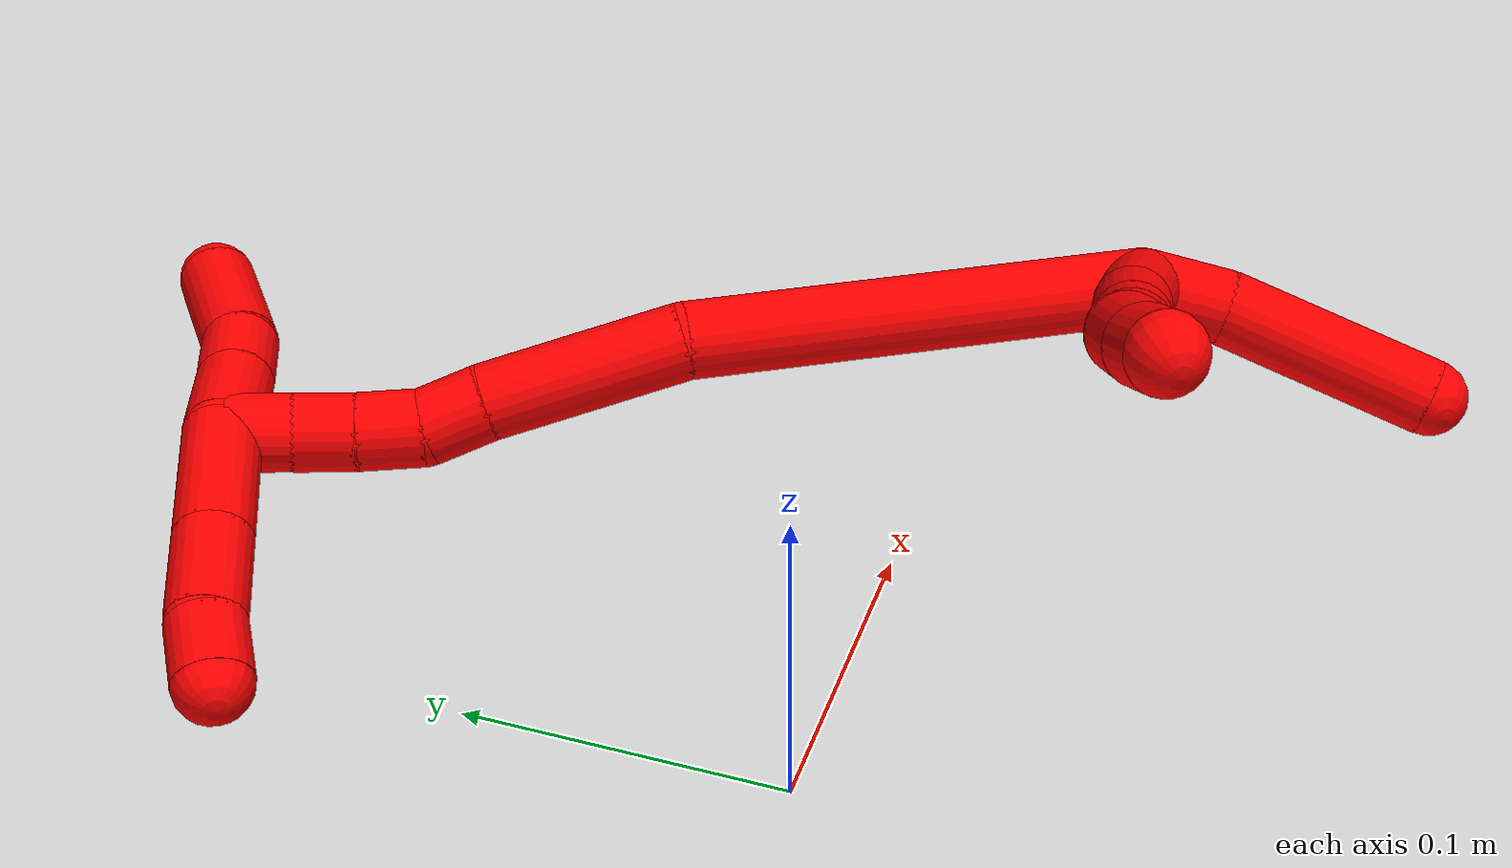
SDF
<sdf version="1.7">
 <world name="default">
  <model name="2">
   <static>0</static>
   <link name="2">
    <collision name="collision-cylinder-e_1_2_8">
     <pose>-0.010864 0.001803 -0.015201 -3.02351 -0.617224 2.77492</pose>
     <geometry><cylinder><radius>0.0125</radius><length>0.037543</length></cylinder></geometry>
     <surface>
      <friction><ode><mu>1.16</mu><mu2>1.16</mu2><slip1>0</slip1><slip2>0</slip2></ode></friction>
      <contact><ode><kp>1e+06</kp><kd>1</kd><max_vel>0</max_vel><min_depth>0.001</min_depth></ode></contact>
     </surface>
    </collision>
    <visual name="visual-cylinder-e_1_2_8">
     <pose>-0.010864 0.001803 -0.015201 -3.02351 -0.617224 2.77492</pose>
     <geometry><cylinder><radius>0.0125</radius><length>0.037543</length></cylinder></geometry>
     <material><ambient>1 0 0 1</ambient></material>
    </visual>
    <collision name="collision-cylinder-e_2_8_9">
     <pose>-0.029766 0.004052 -0.042951 -3.10614 -0.569348 3.02057</pose>
     <geometry><cylinder><radius>0.0125</radius><length>0.029816</length></cylinder></geometry>
     <surface>
      <friction><ode><mu>1.16</mu><mu2>1.16</mu2><slip1>0</slip1><slip2>0</slip2></ode></friction>
      <contact><ode><kp>1e+06</kp><kd>1</kd><max_vel>0</max_vel><min_depth>0.001</min_depth></ode></contact>
     </surface>
    </collision>
    <visual name="visual-cylinder-e_2_8_9">
     <pose>-0.029766 0.004052 -0.042951 -3.10614 -0.569348 3.02057</pose>
     <geometry><cylinder><radius>0.0125</radius><length>0.029816</length></cylinder></geometry>
     <material><ambient>1 0 0 1</ambient></material>
    </visual>
    <collision name="collision-cylinder-e_3_9_10">
     <pose>-0.043634 0.004515 -0.063784 -3.13941 -0.61335 3.1347</pose>
     <geometry><cylinder><radius>0.0125</radius><length>0.020262</length></cylinder></geometry>
     <surface>
      <friction><ode><mu>1.16</mu><mu2>1.16</mu2><slip1>0</slip1><slip2>0</slip2></ode></friction>
      <contact><ode><kp>1e+06</kp><kd>1</kd><max_vel>0</max_vel><min_depth>0.001</min_depth></ode></contact>
     </surface>
    </collision>
    <visual name="visual-cylinder-e_3_9_10">
     <pose>-0.043634 0.004515 -0.063784 -3.13941 -0.61335 3.1347</pose>
     <geometry><cylinder><radius>0.0125</radius><length>0.020262</length></cylinder></geometry>
     <material><ambient>1 0 0 1</ambient></material>
    </visual>
    <collision name="collision-cylinder-e_4_10_11">
     <pose>-0.05612 0.004737 -0.079702 -3.11484 -0.716793 3.07021</pose>
     <geometry><cylinder><radius>0.0125</radius><length>0.020257</length></cylinder></geometry>
     <surface>
      <friction><ode><mu>1.16</mu><mu2>1.16</mu2><slip1>0</slip1><slip2>0</slip2></ode></friction>
      <contact><ode><kp>1e+06</kp><kd>1</kd><max_vel>0</max_vel><min_depth>0.001</min_depth></ode></contact>
     </surface>
    </collision>
    <visual name="visual-cylinder-e_4_10_11">
     <pose>-0.05612 0.004737 -0.079702 -3.11484 -0.716793 3.07021</pose>
     <geometry><cylinder><radius>0.0125</radius><length>0.020257</length></cylinder></geometry>
     <material><ambient>1 0 0 1</ambient></material>
    </visual>
    <collision name="collision-cylinder-e_5_11_12">
     <pose>-0.067458 0.003157 -0.097165 2.962 -0.438407 -2.37343</pose>
     <geometry><cylinder><radius>0.0125</radius><length>0.022068</length></cylinder></geometry>
     <surface>
      <friction><ode><mu>1.16</mu><mu2>1.16</mu2><slip1>0</slip1><slip2>0</slip2></ode></friction>
      <contact><ode><kp>1e+06</kp><kd>1</kd><max_vel>0</max_vel><min_depth>0.001</min_depth></ode></contact>
     </surface>
    </collision>
    <visual name="visual-cylinder-e_5_11_12">
     <pose>-0.067458 0.003157 -0.097165 2.962 -0.438407 -2.37343</pose>
     <geometry><cylinder><radius>0.0125</radius><length>0.022068</length></cylinder></geometry>
     <material><ambient>1 0 0 1</ambient></material>
    </visual>
    <collision name="collision-cylinder-e_6_12_6">
     <pose>-0.076292 -0.001038 -0.115798 2.87438 -0.426776 -2.03119</pose>
     <geometry><cylinder><radius>0.0125</radius><length>0.020054</length></cylinder></geometry>
     <surface>
      <friction><ode><mu>1.16</mu><mu2>1.16</mu2><slip1>0</slip1><slip2>0</slip2></ode></friction>
      <contact><ode><kp>1e+06</kp><kd>1</kd><max_vel>0</max_vel><min_depth>0.001</min_depth></ode></contact>
     </surface>
    </collision>
    <visual name="visual-cylinder-e_6_12_6">
     <pose>-0.076292 -0.001038 -0.115798 2.87438 -0.426776 -2.03119</pose>
     <geometry><cylinder><radius>0.0125</radius><length>0.020054</length></cylinder></geometry>
     <material><ambient>1 0 0 1</ambient></material>
    </visual>
    <collision name="collision-cylinder-e_1_2_13">
     <pose>0.010619 -0.008432 -0.004123 2.02556 0.846981 1.25089</pose>
     <geometry><cylinder><radius>0.0125</radius><length>0.028346</length></cylinder></geometry>
     <surface>
      <friction><ode><mu>1.16</mu><mu2>1.16</mu2><slip1>0</slip1><slip2>0</slip2></ode></friction>
      <contact><ode><kp>1e+06</kp><kd>1</kd><max_vel>0</max_vel><min_depth>0.001</min_depth></ode></contact>
     </surface>
    </collision>
    <visual name="visual-cylinder-e_1_2_13">
     <pose>0.010619 -0.008432 -0.004123 2.02556 0.846981 1.25089</pose>
     <geometry><cylinder><radius>0.0125</radius><length>0.028346</length></cylinder></geometry>
     <material><ambient>1 0 0 1</ambient></material>
    </visual>
    <collision name="collision-cylinder-e_2_13_5">
     <pose>0.045373 -0.034532 -0.027967 2.41105 0.739116 1.58358</pose>
     <geometry><cylinder><radius>0.0125</radius><length>0.071654</length></cylinder></geometry>
     <surface>
      <friction><ode><mu>1.16</mu><mu2>1.16</mu2><slip1>0</slip1><slip2>0</slip2></ode></friction>
      <contact><ode><kp>1e+06</kp><kd>1</kd><max_vel>0</max_vel><min_depth>0.001</min_depth></ode></contact>
     </surface>
    </collision>
    <visual name="visual-cylinder-e_2_13_5">
     <pose>0.045373 -0.034532 -0.027967 2.41105 0.739116 1.58358</pose>
     <geometry><cylinder><radius>0.0125</radius><length>0.071654</length></cylinder></geometry>
     <material><ambient>1 0 0 1</ambient></material>
    </visual>
    <collision name="collision-cylinder-e_1_2_14">
     <pose>-0.044547 0.061 0.002425 -1.53106 -0.630385 0.607328</pose>
     <geometry><cylinder><radius>0.0125</radius><length>0.151147</length></cylinder></geometry>
     <surface>
      <friction><ode><mu>1.16</mu><mu2>1.16</mu2><slip1>0</slip1><slip2>0</slip2></ode></friction>
      <contact><ode><kp>1e+06</kp><kd>1</kd><max_vel>0</max_vel><min_depth>0.001</min_depth></ode></contact>
     </surface>
    </collision>
    <visual name="visual-cylinder-e_1_2_14">
     <pose>-0.044547 0.061 0.002425 -1.53106 -0.630385 0.607328</pose>
     <geometry><cylinder><radius>0.0125</radius><length>0.151147</length></cylinder></geometry>
     <material><ambient>1 0 0 1</ambient></material>
    </visual>
    <collision name="collision-cylinder-e_2_14_15">
     <pose>-0.101935 0.152126 0.006085 -1.52986 -0.402618 0.386874</pose>
     <geometry><cylinder><radius>0.0125</radius><length>0.065542</length></cylinder></geometry>
     <surface>
      <friction><ode><mu>1.16</mu><mu2>1.16</mu2><slip1>0</slip1><slip2>0</slip2></ode></friction>
      <contact><ode><kp>1e+06</kp><kd>1</kd><max_vel>0</max_vel><min_depth>0.001</min_depth></ode></contact>
     </surface>
    </collision>
    <visual name="visual-cylinder-e_2_14_15">
     <pose>-0.101935 0.152126 0.006085 -1.52986 -0.402618 0.386874</pose>
     <geometry><cylinder><radius>0.0125</radius><length>0.065542</length></cylinder></geometry>
     <material><ambient>1 0 0 1</ambient></material>
    </visual>
    <collision name="collision-cylinder-e_3_15_16">
     <pose>-0.1181 0.192106 0.007223 -1.58044 -0.325301 0.328399</pose>
     <geometry><cylinder><radius>0.0125</radius><length>0.020802</length></cylinder></geometry>
     <surface>
      <friction><ode><mu>1.16</mu><mu2>1.16</mu2><slip1>0</slip1><slip2>0</slip2></ode></friction>
      <contact><ode><kp>1e+06</kp><kd>1</kd><max_vel>0</max_vel><min_depth>0.001</min_depth></ode></contact>
     </surface>
    </collision>
    <visual name="visual-cylinder-e_3_15_16">
     <pose>-0.1181 0.192106 0.007223 -1.58044 -0.325301 0.328399</pose>
     <geometry><cylinder><radius>0.0125</radius><length>0.020802</length></cylinder></geometry>
     <material><ambient>1 0 0 1</ambient></material>
    </visual>
    <collision name="collision-cylinder-e_4_16_17">
     <pose>-0.127415 0.21036 0.008614 -1.39572 -0.612341 0.518283</pose>
     <geometry><cylinder><radius>0.0125</radius><length>0.020845</length></cylinder></geometry>
     <surface>
      <friction><ode><mu>1.16</mu><mu2>1.16</mu2><slip1>0</slip1><slip2>0</slip2></ode></friction>
      <contact><ode><kp>1e+06</kp><kd>1</kd><max_vel>0</max_vel><min_depth>0.001</min_depth></ode></contact>
     </surface>
    </collision>
    <visual name="visual-cylinder-e_4_16_17">
     <pose>-0.127415 0.21036 0.008614 -1.39572 -0.612341 0.518283</pose>
     <geometry><cylinder><radius>0.0125</radius><length>0.020845</length></cylinder></geometry>
     <material><ambient>1 0 0 1</ambient></material>
    </visual>
    <collision name="collision-cylinder-e_5_17_18">
     <pose>-0.139386 0.226627 0.012049 -1.3279 -0.635598 0.503839</pose>
     <geometry><cylinder><radius>0.0125</radius><length>0.020148</length></cylinder></geometry>
     <surface>
      <friction><ode><mu>1.16</mu><mu2>1.16</mu2><slip1>0</slip1><slip2>0</slip2></ode></friction>
      <contact><ode><kp>1e+06</kp><kd>1</kd><max_vel>0</max_vel><min_depth>0.001</min_depth></ode></contact>
     </surface>
    </collision>
    <visual name="visual-cylinder-e_5_17_18">
     <pose>-0.139386 0.226627 0.012049 -1.3279 -0.635598 0.503839</pose>
     <geometry><cylinder><radius>0.0125</radius><length>0.020148</length></cylinder></geometry>
     <material><ambient>1 0 0 1</ambient></material>
    </visual>
    <collision name="collision-cylinder-e_6_18_1">
     <pose>-0.152845 0.242204 0.014607 -1.49206 -0.768726 0.715478</pose>
     <geometry><cylinder><radius>0.0125</radius><length>0.021516</length></cylinder></geometry>
     <surface>
      <friction><ode><mu>1.16</mu><mu2>1.16</mu2><slip1>0</slip1><slip2>0</slip2></ode></friction>
      <contact><ode><kp>1e+06</kp><kd>1</kd><max_vel>0</max_vel><min_depth>0.001</min_depth></ode></contact>
     </surface>
    </collision>
    <visual name="visual-cylinder-e_6_18_1">
     <pose>-0.152845 0.242204 0.014607 -1.49206 -0.768726 0.715478</pose>
     <geometry><cylinder><radius>0.0125</radius><length>0.021516</length></cylinder></geometry>
     <material><ambient>1 0 0 1</ambient></material>
    </visual>
    <collision name="collision-cylinder-e_1_1_19">
     <pose>-0.15713 0.248456 0.03053 0.094839 0.204747 0.00975</pose>
     <geometry><cylinder><radius>0.0125</radius><length>0.031425</length></cylinder></geometry>
     <surface>
      <friction><ode><mu>1.16</mu><mu2>1.16</mu2><slip1>0</slip1><slip2>0</slip2></ode></friction>
      <contact><ode><kp>1e+06</kp><kd>1</kd><max_vel>0</max_vel><min_depth>0.001</min_depth></ode></contact>
     </surface>
    </collision>
    <visual name="visual-cylinder-e_1_1_19">
     <pose>-0.15713 0.248456 0.03053 0.094839 0.204747 0.00975</pose>
     <geometry><cylinder><radius>0.0125</radius><length>0.031425</length></cylinder></geometry>
     <material><ambient>1 0 0 1</ambient></material>
    </visual>
    <collision name="collision-cylinder-e_2_19_20">
     <pose>-0.15225 0.245999 0.057452 0.086013 0.143661 0.006193</pose>
     <geometry><cylinder><radius>0.0125</radius><length>0.023541</length></cylinder></geometry>
     <surface>
      <friction><ode><mu>1.16</mu><mu2>1.16</mu2><slip1>0</slip1><slip2>0</slip2></ode></friction>
      <contact><ode><kp>1e+06</kp><kd>1</kd><max_vel>0</max_vel><min_depth>0.001</min_depth></ode></contact>
     </surface>
    </collision>
    <visual name="visual-cylinder-e_2_19_20">
     <pose>-0.15225 0.245999 0.057452 0.086013 0.143661 0.006193</pose>
     <geometry><cylinder><radius>0.0125</radius><length>0.023541</length></cylinder></geometry>
     <material><ambient>1 0 0 1</ambient></material>
    </visual>
    <collision name="collision-cylinder-e_3_20_4">
     <pose>-0.15053 0.247559 0.091429 -0.113992 0.001532 -8.7e-05</pose>
     <geometry><cylinder><radius>0.0125</radius><length>0.045034</length></cylinder></geometry>
     <surface>
      <friction><ode><mu>1.16</mu><mu2>1.16</mu2><slip1>0</slip1><slip2>0</slip2></ode></friction>
      <contact><ode><kp>1e+06</kp><kd>1</kd><max_vel>0</max_vel><min_depth>0.001</min_depth></ode></contact>
     </surface>
    </collision>
    <visual name="visual-cylinder-e_3_20_4">
     <pose>-0.15053 0.247559 0.091429 -0.113992 0.001532 -8.7e-05</pose>
     <geometry><cylinder><radius>0.0125</radius><length>0.045034</length></cylinder></geometry>
     <material><ambient>1 0 0 1</ambient></material>
    </visual>
    <collision name="collision-cylinder-e_1_1_21">
     <pose>-0.159972 0.25466 -0.006671 -2.92801 0.015738 -0.146546</pose>
     <geometry><cylinder><radius>0.0125</radius><length>0.044795</length></cylinder></geometry>
     <surface>
      <friction><ode><mu>1.16</mu><mu2>1.16</mu2><slip1>0</slip1><slip2>0</slip2></ode></friction>
      <contact><ode><kp>1e+06</kp><kd>1</kd><max_vel>0</max_vel><min_depth>0.001</min_depth></ode></contact>
     </surface>
    </collision>
    <visual name="visual-cylinder-e_1_1_21">
     <pose>-0.159972 0.25466 -0.006671 -2.92801 0.015738 -0.146546</pose>
     <geometry><cylinder><radius>0.0125</radius><length>0.044795</length></cylinder></geometry>
     <material><ambient>1 0 0 1</ambient></material>
    </visual>
    <collision name="collision-cylinder-e_2_21_22">
     <pose>-0.159353 0.262965 -0.044968 -2.92809 0.015871 -0.147839</pose>
     <geometry><cylinder><radius>0.0125</radius><length>0.033591</length></cylinder></geometry>
     <surface>
      <friction><ode><mu>1.16</mu><mu2>1.16</mu2><slip1>0</slip1><slip2>0</slip2></ode></friction>
      <contact><ode><kp>1e+06</kp><kd>1</kd><max_vel>0</max_vel><min_depth>0.001</min_depth></ode></contact>
     </surface>
    </collision>
    <visual name="visual-cylinder-e_2_21_22">
     <pose>-0.159353 0.262965 -0.044968 -2.92809 0.015871 -0.147839</pose>
     <geometry><cylinder><radius>0.0125</radius><length>0.033591</length></cylinder></geometry>
     <material><ambient>1 0 0 1</ambient></material>
    </visual>
    <collision name="collision-cylinder-e_3_22_3">
     <pose>-0.157111 0.268123 -0.071884 -2.9905 0.183808 -1.76642</pose>
     <geometry><cylinder><radius>0.0125</radius><length>0.021614</length></cylinder></geometry>
     <surface>
      <friction><ode><mu>1.16</mu><mu2>1.16</mu2><slip1>0</slip1><slip2>0</slip2></ode></friction>
      <contact><ode><kp>1e+06</kp><kd>1</kd><max_vel>0</max_vel><min_depth>0.001</min_depth></ode></contact>
     </surface>
    </collision>
    <visual name="visual-cylinder-e_3_22_3">
     <pose>-0.157111 0.268123 -0.071884 -2.9905 0.183808 -1.76642</pose>
     <geometry><cylinder><radius>0.0125</radius><length>0.021614</length></cylinder></geometry>
     <material><ambient>1 0 0 1</ambient></material>
    </visual>
    <collision name="collision-sphere-3">
     <pose>-0.155136 0.269722 -0.082388 0 -0 0</pose>
     <geometry><sphere><radius>0.0125</radius></sphere></geometry>
     <surface>
      <friction><ode><mu>1.16</mu><mu2>1.16</mu2><slip1>0</slip1><slip2>0</slip2></ode></friction>
      <contact><ode><kp>1e+06</kp><kd>1</kd><max_vel>0</max_vel><min_depth>0.001</min_depth></ode></contact>
     </surface>
    </collision>
    <visual name="visual-sphere-3">
     <pose>-0.155136 0.269722 -0.082388 0 -0 0</pose>
     <geometry><sphere><radius>0.0125</radius></sphere></geometry>
     <material><ambient>1 0 0 1</ambient></material>
    </visual>
    <collision name="collision-sphere-22">
     <pose>-0.159086 0.266523 -0.06138 0 -0 0</pose>
     <geometry><sphere><radius>0.0125</radius></sphere></geometry>
     <surface>
      <friction><ode><mu>1.16</mu><mu2>1.16</mu2><slip1>0</slip1><slip2>0</slip2></ode></friction>
      <contact><ode><kp>1e+06</kp><kd>1</kd><max_vel>0</max_vel><min_depth>0.001</min_depth></ode></contact>
     </surface>
    </collision>
    <visual name="visual-sphere-22">
     <pose>-0.159086 0.266523 -0.06138 0 -0 0</pose>
     <geometry><sphere><radius>0.0125</radius></sphere></geometry>
     <material><ambient>1 0 0 1</ambient></material>
    </visual>
    <collision name="collision-sphere-21">
     <pose>-0.159619 0.259407 -0.028556 0 -0 0</pose>
     <geometry><sphere><radius>0.0125</radius></sphere></geometry>
     <surface>
      <friction><ode><mu>1.16</mu><mu2>1.16</mu2><slip1>0</slip1><slip2>0</slip2></ode></friction>
      <contact><ode><kp>1e+06</kp><kd>1</kd><max_vel>0</max_vel><min_depth>0.001</min_depth></ode></contact>
     </surface>
    </collision>
    <visual name="visual-sphere-21">
     <pose>-0.159619 0.259407 -0.028556 0 -0 0</pose>
     <geometry><sphere><radius>0.0125</radius></sphere></geometry>
     <material><ambient>1 0 0 1</ambient></material>
    </visual>
    <collision name="collision-sphere-4">
     <pose>-0.150496 0.25012 0.1138 0 -0 0</pose>
     <geometry><sphere><radius>0.0125</radius></sphere></geometry>
     <surface>
      <friction><ode><mu>1.16</mu><mu2>1.16</mu2><slip1>0</slip1><slip2>0</slip2></ode></friction>
      <contact><ode><kp>1e+06</kp><kd>1</kd><max_vel>0</max_vel><min_depth>0.001</min_depth></ode></contact>
     </surface>
    </collision>
    <visual name="visual-sphere-4">
     <pose>-0.150496 0.25012 0.1138 0 -0 0</pose>
     <geometry><sphere><radius>0.0125</radius></sphere></geometry>
     <material><ambient>1 0 0 1</ambient></material>
    </visual>
    <collision name="collision-sphere-20">
     <pose>-0.150565 0.244998 0.069058 0 -0 0</pose>
     <geometry><sphere><radius>0.0125</radius></sphere></geometry>
     <surface>
      <friction><ode><mu>1.16</mu><mu2>1.16</mu2><slip1>0</slip1><slip2>0</slip2></ode></friction>
      <contact><ode><kp>1e+06</kp><kd>1</kd><max_vel>0</max_vel><min_depth>0.001</min_depth></ode></contact>
     </surface>
    </collision>
    <visual name="visual-sphere-20">
     <pose>-0.150565 0.244998 0.069058 0 -0 0</pose>
     <geometry><sphere><radius>0.0125</radius></sphere></geometry>
     <material><ambient>1 0 0 1</ambient></material>
    </visual>
    <collision name="collision-sphere-12">
     <pose>-0.072142 0.001372 -0.106995 0 -0 0</pose>
     <geometry><sphere><radius>0.0125</radius></sphere></geometry>
     <surface>
      <friction><ode><mu>1.16</mu><mu2>1.16</mu2><slip1>0</slip1><slip2>0</slip2></ode></friction>
      <contact><ode><kp>1e+06</kp><kd>1</kd><max_vel>0</max_vel><min_depth>0.001</min_depth></ode></contact>
     </surface>
    </collision>
    <visual name="visual-sphere-12">
     <pose>-0.072142 0.001372 -0.106995 0 -0 0</pose>
     <geometry><sphere><radius>0.0125</radius></sphere></geometry>
     <material><ambient>1 0 0 1</ambient></material>
    </visual>
    <collision name="collision-sphere-11">
     <pose>-0.062774 0.004942 -0.087335 0 -0 0</pose>
     <geometry><sphere><radius>0.0125</radius></sphere></geometry>
     <surface>
      <friction><ode><mu>1.16</mu><mu2>1.16</mu2><slip1>0</slip1><slip2>0</slip2></ode></friction>
      <contact><ode><kp>1e+06</kp><kd>1</kd><max_vel>0</max_vel><min_depth>0.001</min_depth></ode></contact>
     </surface>
    </collision>
    <visual name="visual-sphere-11">
     <pose>-0.062774 0.004942 -0.087335 0 -0 0</pose>
     <geometry><sphere><radius>0.0125</radius></sphere></geometry>
     <material><ambient>1 0 0 1</ambient></material>
    </visual>
    <collision name="collision-sphere-10">
     <pose>-0.049465 0.004533 -0.072068 0 -0 0</pose>
     <geometry><sphere><radius>0.0125</radius></sphere></geometry>
     <surface>
      <friction><ode><mu>1.16</mu><mu2>1.16</mu2><slip1>0</slip1><slip2>0</slip2></ode></friction>
      <contact><ode><kp>1e+06</kp><kd>1</kd><max_vel>0</max_vel><min_depth>0.001</min_depth></ode></contact>
     </surface>
    </collision>
    <visual name="visual-sphere-10">
     <pose>-0.049465 0.004533 -0.072068 0 -0 0</pose>
     <geometry><sphere><radius>0.0125</radius></sphere></geometry>
     <material><ambient>1 0 0 1</ambient></material>
    </visual>
    <collision name="collision-sphere-9">
     <pose>-0.037802 0.004497 -0.0555 0 -0 0</pose>
     <geometry><sphere><radius>0.0125</radius></sphere></geometry>
     <surface>
      <friction><ode><mu>1.16</mu><mu2>1.16</mu2><slip1>0</slip1><slip2>0</slip2></ode></friction>
      <contact><ode><kp>1e+06</kp><kd>1</kd><max_vel>0</max_vel><min_depth>0.001</min_depth></ode></contact>
     </surface>
    </collision>
    <visual name="visual-sphere-9">
     <pose>-0.037802 0.004497 -0.0555 0 -0 0</pose>
     <geometry><sphere><radius>0.0125</radius></sphere></geometry>
     <material><ambient>1 0 0 1</ambient></material>
    </visual>
    <collision name="collision-sphere-2">
     <geometry><sphere><radius>0.0125</radius></sphere></geometry>
     <surface>
      <friction><ode><mu>1.16</mu><mu2>1.16</mu2><slip1>0</slip1><slip2>0</slip2></ode></friction>
      <contact><ode><kp>1e+06</kp><kd>1</kd><max_vel>0</max_vel><min_depth>0.001</min_depth></ode></contact>
     </surface>
    </collision>
    <visual name="visual-sphere-2">
     <geometry><sphere><radius>0.0125</radius></sphere></geometry>
     <material><ambient>1 0 0 1</ambient></material>
    </visual>
    <collision name="collision-sphere-19">
     <pose>-0.153935 0.246999 0.045846 0 -0 0</pose>
     <geometry><sphere><radius>0.0125</radius></sphere></geometry>
     <surface>
      <friction><ode><mu>1.16</mu><mu2>1.16</mu2><slip1>0</slip1><slip2>0</slip2></ode></friction>
      <contact><ode><kp>1e+06</kp><kd>1</kd><max_vel>0</max_vel><min_depth>0.001</min_depth></ode></contact>
     </surface>
    </collision>
    <visual name="visual-sphere-19">
     <pose>-0.153935 0.246999 0.045846 0 -0 0</pose>
     <geometry><sphere><radius>0.0125</radius></sphere></geometry>
     <material><ambient>1 0 0 1</ambient></material>
    </visual>
    <collision name="collision-sphere-8">
     <pose>-0.021729 0.003607 -0.030403 0 -0 0</pose>
     <geometry><sphere><radius>0.0125</radius></sphere></geometry>
     <surface>
      <friction><ode><mu>1.16</mu><mu2>1.16</mu2><slip1>0</slip1><slip2>0</slip2></ode></friction>
      <contact><ode><kp>1e+06</kp><kd>1</kd><max_vel>0</max_vel><min_depth>0.001</min_depth></ode></contact>
     </surface>
    </collision>
    <visual name="visual-sphere-8">
     <pose>-0.021729 0.003607 -0.030403 0 -0 0</pose>
     <geometry><sphere><radius>0.0125</radius></sphere></geometry>
     <material><ambient>1 0 0 1</ambient></material>
    </visual>
    <collision name="collision-sphere-6">
     <pose>-0.080442 -0.003448 -0.124602 0 -0 0</pose>
     <geometry><sphere><radius>0.0125</radius></sphere></geometry>
     <surface>
      <friction><ode><mu>1.16</mu><mu2>1.16</mu2><slip1>0</slip1><slip2>0</slip2></ode></friction>
      <contact><ode><kp>1e+06</kp><kd>1</kd><max_vel>0</max_vel><min_depth>0.001</min_depth></ode></contact>
     </surface>
    </collision>
    <visual name="visual-sphere-6">
     <pose>-0.080442 -0.003448 -0.124602 0 -0 0</pose>
     <geometry><sphere><radius>0.0125</radius></sphere></geometry>
     <material><ambient>1 0 0 1</ambient></material>
    </visual>
    <collision name="collision-sphere-13">
     <pose>0.021239 -0.016864 -0.008245 0 -0 0</pose>
     <geometry><sphere><radius>0.0125</radius></sphere></geometry>
     <surface>
      <friction><ode><mu>1.16</mu><mu2>1.16</mu2><slip1>0</slip1><slip2>0</slip2></ode></friction>
      <contact><ode><kp>1e+06</kp><kd>1</kd><max_vel>0</max_vel><min_depth>0.001</min_depth></ode></contact>
     </surface>
    </collision>
    <visual name="visual-sphere-13">
     <pose>0.021239 -0.016864 -0.008245 0 -0 0</pose>
     <geometry><sphere><radius>0.0125</radius></sphere></geometry>
     <material><ambient>1 0 0 1</ambient></material>
    </visual>
    <collision name="collision-sphere-5">
     <pose>0.069508 -0.052201 -0.047689 0 -0 0</pose>
     <geometry><sphere><radius>0.0125</radius></sphere></geometry>
     <surface>
      <friction><ode><mu>1.16</mu><mu2>1.16</mu2><slip1>0</slip1><slip2>0</slip2></ode></friction>
      <contact><ode><kp>1e+06</kp><kd>1</kd><max_vel>0</max_vel><min_depth>0.001</min_depth></ode></contact>
     </surface>
    </collision>
    <visual name="visual-sphere-5">
     <pose>0.069508 -0.052201 -0.047689 0 -0 0</pose>
     <geometry><sphere><radius>0.0125</radius></sphere></geometry>
     <material><ambient>1 0 0 1</ambient></material>
    </visual>
    <collision name="collision-sphere-14">
     <pose>-0.089094 0.122 0.004851 0 -0 0</pose>
     <geometry><sphere><radius>0.0125</radius></sphere></geometry>
     <surface>
      <friction><ode><mu>1.16</mu><mu2>1.16</mu2><slip1>0</slip1><slip2>0</slip2></ode></friction>
      <contact><ode><kp>1e+06</kp><kd>1</kd><max_vel>0</max_vel><min_depth>0.001</min_depth></ode></contact>
     </surface>
    </collision>
    <visual name="visual-sphere-14">
     <pose>-0.089094 0.122 0.004851 0 -0 0</pose>
     <geometry><sphere><radius>0.0125</radius></sphere></geometry>
     <material><ambient>1 0 0 1</ambient></material>
    </visual>
    <collision name="collision-sphere-15">
     <pose>-0.114776 0.182251 0.007318 0 -0 0</pose>
     <geometry><sphere><radius>0.0125</radius></sphere></geometry>
     <surface>
      <friction><ode><mu>1.16</mu><mu2>1.16</mu2><slip1>0</slip1><slip2>0</slip2></ode></friction>
      <contact><ode><kp>1e+06</kp><kd>1</kd><max_vel>0</max_vel><min_depth>0.001</min_depth></ode></contact>
     </surface>
    </collision>
    <visual name="visual-sphere-15">
     <pose>-0.114776 0.182251 0.007318 0 -0 0</pose>
     <geometry><sphere><radius>0.0125</radius></sphere></geometry>
     <material><ambient>1 0 0 1</ambient></material>
    </visual>
    <collision name="collision-sphere-16">
     <pose>-0.121424 0.201962 0.007128 0 -0 0</pose>
     <geometry><sphere><radius>0.0125</radius></sphere></geometry>
     <surface>
      <friction><ode><mu>1.16</mu><mu2>1.16</mu2><slip1>0</slip1><slip2>0</slip2></ode></friction>
      <contact><ode><kp>1e+06</kp><kd>1</kd><max_vel>0</max_vel><min_depth>0.001</min_depth></ode></contact>
     </surface>
    </collision>
    <visual name="visual-sphere-16">
     <pose>-0.121424 0.201962 0.007128 0 -0 0</pose>
     <geometry><sphere><radius>0.0125</radius></sphere></geometry>
     <material><ambient>1 0 0 1</ambient></material>
    </visual>
    <collision name="collision-sphere-17">
     <pose>-0.133405 0.218758 0.010099 0 -0 0</pose>
     <geometry><sphere><radius>0.0125</radius></sphere></geometry>
     <surface>
      <friction><ode><mu>1.16</mu><mu2>1.16</mu2><slip1>0</slip1><slip2>0</slip2></ode></friction>
      <contact><ode><kp>1e+06</kp><kd>1</kd><max_vel>0</max_vel><min_depth>0.001</min_depth></ode></contact>
     </surface>
    </collision>
    <visual name="visual-sphere-17">
     <pose>-0.133405 0.218758 0.010099 0 -0 0</pose>
     <geometry><sphere><radius>0.0125</radius></sphere></geometry>
     <material><ambient>1 0 0 1</ambient></material>
    </visual>
    <collision name="collision-sphere-18">
     <pose>-0.145366 0.234496 0.013999 0 -0 0</pose>
     <geometry><sphere><radius>0.0125</radius></sphere></geometry>
     <surface>
      <friction><ode><mu>1.16</mu><mu2>1.16</mu2><slip1>0</slip1><slip2>0</slip2></ode></friction>
      <contact><ode><kp>1e+06</kp><kd>1</kd><max_vel>0</max_vel><min_depth>0.001</min_depth></ode></contact>
     </surface>
    </collision>
    <visual name="visual-sphere-18">
     <pose>-0.145366 0.234496 0.013999 0 -0 0</pose>
     <geometry><sphere><radius>0.0125</radius></sphere></geometry>
     <material><ambient>1 0 0 1</ambient></material>
    </visual>
    <collision name="collision-sphere-1">
     <pose>-0.160324 0.249913 0.015215 0 -0 0</pose>
     <geometry><sphere><radius>0.0125</radius></sphere></geometry>
     <surface>
      <friction><ode><mu>1.16</mu><mu2>1.16</mu2><slip1>0</slip1><slip2>0</slip2></ode></friction>
      <contact><ode><kp>1e+06</kp><kd>1</kd><max_vel>0</max_vel><min_depth>0.001</min_depth></ode></contact>
     </surface>
    </collision>
    <visual name="visual-sphere-1">
     <pose>-0.160324 0.249913 0.015215 0 -0 0</pose>
     <geometry><sphere><radius>0.0125</radius></sphere></geometry>
     <material><ambient>1 0 0 1</ambient></material>
    </visual>
    <inertial>
     <pose>-0.078163 0.114458 -0.008836 0 -0 0</pose>
     <mass>0.75</mass>
     <inertia>
      <ixx>0.000396</ixx>
      <ixy>0</ixy>
      <ixz>0</ixz>
      <iyy>0.000335</iyy>
      <iyz>0</iyz>
      <izz>-9.5e-05</izz>
     </inertia>
    </inertial>
   </link>
   <pose>0.214894 -0.050459 0.036507 -1.6384 0.957465 -1.0642</pose>
  </model>
 </world>
</sdf>
